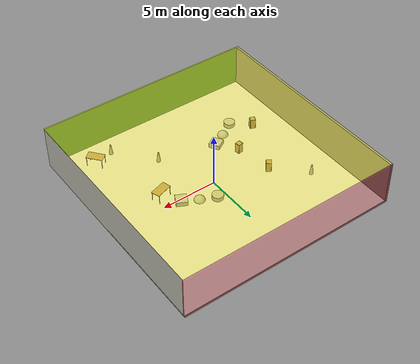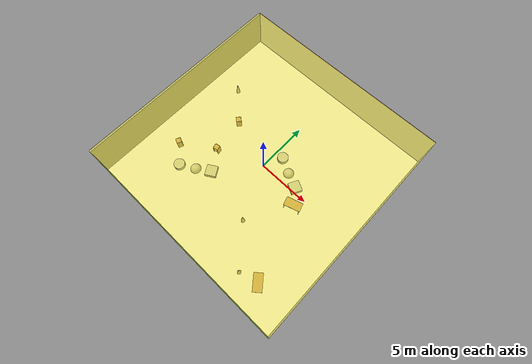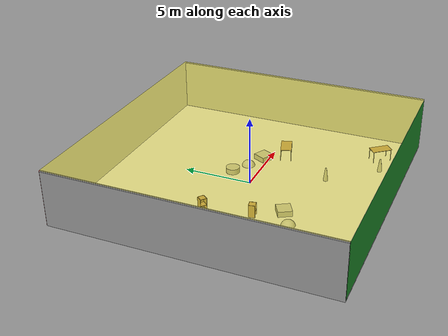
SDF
<sdf version="1.4">
 <world name="default">
  <physics type="ode">
   <max_step_size>0.001</max_step_size>
   <real_time_factor>1</real_time_factor>
   <real_time_update_rate>1000</real_time_update_rate>
   <gravity>0 0 -9.8</gravity>
  </physics>
  <scene><ambient>0.4 0.4 0.4 1</ambient><background>0.7 0.7 0.7 1</background><shadows>1</shadows></scene>
  <model name="Surrounding">
   <static>1</static>
   <link name="Ceiling">
    <collision name="Ceiling_Collision"><geometry><box><size>20 20 0.1</size></box></geometry></collision>
    <visual name="Ceiling_Visual">
     <geometry><box><size>20 20 0.1</size></box></geometry>
     <material>
      <script>
       <uri>file://media/materials/scripts/gazebo.material</uri>
       <name>Gazebo/YellowTransparent</name>
      </script>
     </material>
    </visual>
    <pose>0 0 4.05 0 0 0</pose>
   </link>
   <link name="Wall_South">
    <collision name="Wall_South_Collision">
     <geometry><box><size>20 0 4</size></box></geometry>
     <pose>0 0 2 0 -0 0</pose>
    </collision>
    <visual name="Wall_South_Visual">
     <pose>0 0 2 0 -0 0</pose>
     <geometry><box><size>20 0 4</size></box></geometry>
     <material>
      <script><uri>file://media/materials/scripts/gazebo.material</uri><name>Gazebo/Green</name></script>
     </material>
    </visual>
    <velocity_decay><linear>0</linear><angular>0</angular></velocity_decay>
    <pose>0 -10 0 0 -0 0</pose>
   </link>
   <link name="Wall_East">
    <collision name="Wall_21_Collision">
     <geometry><box><size>20 0 4</size></box></geometry>
     <pose>0 0 2 0 -0 0</pose>
    </collision>
    <visual name="Wall_21_Visual">
     <pose>0 0 2 0 -0 0</pose>
     <geometry><box><size>20 0 4</size></box></geometry>
     <material>
      <script><uri>file://media/materials/scripts/gazebo.material</uri><name>Gazebo/PaintedWall</name></script>
     </material>
    </visual>
    <velocity_decay><linear>0</linear><angular>0</angular></velocity_decay>
    <pose>10 0 0 0 -0 1.5708</pose>
   </link>
   <link name="Wall_North">
    <collision name="Wall_22_Collision">
     <geometry><box><size>20 0.2 4</size></box></geometry>
     <pose>0 0 2 0 -0 0</pose>
    </collision>
    <visual name="Wall_22_Visual">
     <pose>0 0 2 0 -0 0</pose>
     <geometry><box><size>20 0.2 4</size></box></geometry>
     <material>
      <script><uri>file://media/materials/scripts/gazebo.material</uri><name>Gazebo/RedTransparent</name></script>
     </material>
    </visual>
    <velocity_decay><linear>0</linear><angular>0</angular></velocity_decay>
    <pose>0 10 0 0 -0 0</pose>
   </link>
   <link name="Wall_West">
    <collision name="Wall_23_Collision">
     <geometry><box><size>20 0.2 4</size></box></geometry>
     <pose>0 0 2 0 -0 0</pose>
    </collision>
    <visual name="Wall_23_Visual">
     <pose>0 0 2 0 -0 0</pose>
     <geometry><box><size>20 0.2 4</size></box></geometry>
     <material>
      <script><uri>file://media/materials/scripts/gazebo.material</uri><name>Gazebo/GreyGradientSky</name></script>
     </material>
    </visual>
    <velocity_decay><linear>0</linear><angular>0</angular></velocity_decay>
    <pose>-10 0 0 0 0 -1.5708</pose>
   </link>
   <link name="Ground_link">
    <collision name="collision">
     <pose>0 0 .05 0 -0 0</pose>
     <geometry><box><size>20 20 0.1</size></box></geometry>
    </collision>
    <visual name="visual">
     <pose>0 0 .05 0 -0 0</pose>
     <geometry><box><size>20 20 0.1</size></box></geometry>
     <material>
      <script><uri>file://media/materials/scripts/gazebo.material</uri><name>Gazebo/WhiteGlow</name></script>
     </material>
    </visual>
   </link>
   <static>1</static>
  </model>
  <spherical_coordinates>
   <surface_model>EARTH_WGS84</surface_model>
   <latitude_deg>0</latitude_deg>
   <longitude_deg>0</longitude_deg>
   <elevation>0</elevation>
   <heading_deg>0</heading_deg>
  </spherical_coordinates>
  <light name="lightball_0" type="diffuse">
   <diffuse>0.8 0.8 0.8 1</diffuse>
   <specular>0.2 0.2 0.2 1</specular>
   <attenuation>
    <range>100</range>
    <constant>0.7</constant>
    <linear>0.01</linear>
    <quadratic>0.001</quadratic>
   </attenuation>
   <direction>-0.5 0.1 -0.9</direction>
   <pose>-8.28148990161 4.34408288523 1.5143266599 0 0 0</pose>
  </light>
  <light name="lightball_1" type="diffuse">
   <diffuse>0.8 0.8 0.8 1</diffuse>
   <specular>0.2 0.2 0.2 1</specular>
   <attenuation>
    <range>100</range>
    <constant>0.7</constant>
    <linear>0.01</linear>
    <quadratic>0.001</quadratic>
   </attenuation>
   <direction>-0.5 0.1 -0.9</direction>
   <pose>-7.83866741627 2.63332645294 0.611773774929 0 0 0</pose>
  </light>
  <light name="lightball_2" type="diffuse">
   <diffuse>0.8 0.8 0.8 1</diffuse>
   <specular>0.2 0.2 0.2 1</specular>
   <attenuation>
    <range>100</range>
    <constant>0.7</constant>
    <linear>0.01</linear>
    <quadratic>0.001</quadratic>
   </attenuation>
   <direction>-0.5 0.1 -0.9</direction>
   <pose>1.28532743877 5.97838456507 1.65695874145 0 0 0</pose>
  </light>
  <include><uri>model://cabinet</uri><pose>-7.0104091544 -3.81145348384 0 0 0 1.18510727264</pose></include>
  <include>
   <uri>model://construction_cone</uri>
   <pose>-7.2011706343 3.99454506365 0 0 0 0.324839529289</pose>
  </include>
  <include>
   <uri>model://textured_shapes</uri>
   <pose>-4.2032797549 -4.44019325581 0 0 0 2.10724213089</pose>
  </include>
  <include><uri>model://cabinet</uri><pose>-4.03329609403 -1.87366116971 0 0 0 1.73358727969</pose></include>
  <include><uri>model://cabinet</uri><pose>-4.6002382743 1.4959302671 0 0 0 0.90770816848</pose></include>
  <include>
   <uri>model://construction_cone</uri>
   <pose>2.26805748084 -4.90583304982 0 0 0 3.09631519773</pose>
  </include>
  <include>
   <uri>model://textured_shapes</uri>
   <pose>2.20075156669 1.00558892027 0 0 0 1.10190448362</pose>
  </include>
  <include>
   <uri>model://construction_cone</uri>
   <pose>5.03947124228 -8.14381608046 0 0 0 2.52920493224</pose>
  </include>
  <include><uri>model://table</uri><pose>4.547698089 -1.08653055261 0 0 0 0.30230690425</pose></include>
  <include><uri>model://table</uri><pose>6.75773046263 -7.72503090081 0 0 0 2.2497911891</pose></include>
 </world>
</sdf>

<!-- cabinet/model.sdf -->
<sdf version="1.5">
  <model name="cabinet">
    <static>true</static>
    <link name="cabinet_bottom_plate">
      <inertial>
        <pose>0 0 -1 0 0 0</pose>
        <inertia>
          <ixx>2.050000</ixx>
          <ixy>0</ixy>
          <ixz>0</ixz>
          <iyy>2.050000</iyy>
          <iyz>0</iyz>
          <izz>2.050000</izz>
        </inertia>
        <mass>25.000000</mass>
      </inertial>
      <collision name="cabinet_bottom_plate_geom">
        <pose>0 0 0.010000 0 0 0</pose>
        <geometry>
          <box>
            <size>0.450000 0.450000 0.020000</size>
          </box>
        </geometry>
      </collision>
      <visual name="cabinet_bottom_plate_geom_visual">
        <pose>0 0 0.010000 0 0 0</pose>
        <geometry>
          <box>
            <size>0.450000 0.450000 0.020000</size>
          </box>
        </geometry>
        <material>
          <script>
            <uri>model://media/materials/scripts/gazebo.material</uri>
            <name>Gazebo/Wood</name>
          </script>
        </material>
      </visual>
      <collision name="cabinet_bottom_plate_geom_cabinet_back_plate">
        <pose>0.235000 0 0.510000 0 0 0</pose>
        <geometry>
          <box>
            <size>0.020000 0.450000 1.020000</size>
          </box>
        </geometry>
      </collision>
      <visual name="cabinet_bottom_plate_geom_cabinet_back_plate_visual">
        <pose>0.235000 0 0.510000 0 0 0</pose>
        <geometry>
          <box>
            <size>0.020000 0.450000 1.020000</size>
          </box>
        </geometry>
        <material>
          <script>
            <uri>model://media/materials/scripts/gazebo.material</uri>
            <name>Gazebo/Wood</name>
          </script>
        </material>
      </visual>
      <collision name="cabinet_bottom_plate_geom_cabinet_left_plate">
        <pose>0 0.235000 0.510000 0 0 0</pose>
        <geometry>
          <box>
            <size>0.450000 0.020000 1.020000</size>
          </box>
        </geometry>
      </collision>
      <visual name="cabinet_bottom_plate_geom_cabinet_left_plate_visual">
        <pose>0 0.235000 0.510000 0 0 0</pose>
        <geometry>
          <box>
            <size>0.450000 0.020000 1.020000</size>
          </box>
        </geometry>
        <material>
          <script>
            <uri>model://media/materials/scripts/gazebo.material</uri>
            <name>Gazebo/Wood</name>
          </script>
        </material>
      </visual>
      <collision name="cabinet_bottom_plate_geom_cabinet_middle_plate">
        <pose>0 0 0.510000 0 0 0</pose>
        <geometry>
          <box>
            <size>0.450000 0.450000 0.020000</size>
          </box>
        </geometry>
      </collision>
      <visual name="cabinet_bottom_plate_geom_cabinet_middle_plate_visual">
        <pose>0 0 0.510000 0 0 0</pose>
        <geometry>
          <box>
            <size>0.450000 0.450000 0.020000</size>
          </box>
        </geometry>
        <material>
          <script>
            <uri>model://media/materials/scripts/gazebo.material</uri>
            <name>Gazebo/Wood</name>
          </script>
        </material>
      </visual>
      <collision name="cabinet_bottom_plate_geom_cabinet_right_plate">
        <pose>0 -0.235000 0.510000 0 0 0</pose>
        <geometry>
          <box>
            <size>0.450000 0.020000 1.020000</size>
          </box>
        </geometry>
      </collision>
      <visual name="cabinet_bottom_plate_geom_cabinet_right_plate_visual">
        <pose>0 -0.235000 0.510000 0 0 0</pose>
        <geometry>
          <box>
            <size>0.450000 0.020000 1.020000</size>
          </box>
        </geometry>
        <material>
          <script>
            <uri>model://media/materials/scripts/gazebo.material</uri>
            <name>Gazebo/Wood</name>
          </script>
        </material>
      </visual>
      <collision name="cabinet_bottom_plate_geom_cabinet_top_plate">
        <pose>0 0 1.010000 0 0 0</pose>
        <geometry>
          <box>
            <size>0.450000 0.450000 0.020000</size>
          </box>
        </geometry>
      </collision>
      <visual name="cabinet_bottom_plate_geom_cabinet_top_plate_visual">
        <pose>0 0 1.010000 0 0 0</pose>
        <geometry>
          <box>
            <size>0.450000 0.450000 0.020000</size>
          </box>
        </geometry>
        <material>
          <script>
            <uri>model://media/materials/scripts/gazebo.material</uri>
            <name>Gazebo/Wood</name>
          </script>
        </material>
      </visual>
    </link>
  </model>
</sdf>

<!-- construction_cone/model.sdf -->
<sdf version="1.5">
  <model name="Construction Cone">
    <link name="link">
      <collision name="collision">
        <geometry>
          <mesh>
            <scale>10 10 10</scale>
            <uri>file://isr-testbed/construction_cone/meshes/construction_cone.dae</uri>
          </mesh>
        </geometry>
      </collision>
      <visual name="visual">
        <geometry>
          <mesh>
            <scale>10 10 10</scale>
            <uri>file://isr-testbed/construction_cone/meshes/construction_cone.dae</uri>
          </mesh>
        </geometry>
      </visual>
    </link>
  </model>
</sdf>

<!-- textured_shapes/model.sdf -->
<sdf version="1.6">
  <model name="textured_shapes">
    <pose>0 0 0.5 0 0 0</pose>
    <link name="box">
      <pose>0 -1.5 0 0 0 0</pose>
      <collision name="collision">
        <geometry>
          <box>
            <size>1 1 1</size>
          </box>
        </geometry>
      </collision>
      <visual name="visual">
        <geometry>
          <box>
            <size>1 1 1</size>
          </box>
        </geometry>
        <material>
          <script>
            <uri>model://../model_source/models/textured_shapes/materials/scripts</uri>
            <uri>model://../model_source/models/textured_shapes/materials/textures</uri>
            <name>TexturedShape/Squares</name>
          </script>
        </material>
      </visual>
    </link>
    <link name="sphere">
      <collision name="collision">
        <geometry>
          <sphere>
            <radius>0.5</radius>
          </sphere>
        </geometry>
      </collision>
      <visual name="visual">
        <geometry>
          <sphere>
            <radius>0.5</radius>
          </sphere>
        </geometry>
        <material>
          <script>
            <uri>model://../model_source/models/textured_shapes/materials/scripts</uri>
            <uri>model://../model_source/models/textured_shapes/materials/textures</uri>
            <name>TexturedShape/Squares</name>
          </script>
        </material>
      </visual>
    </link>
    <link name="cylinder">
      <pose>0 1.5 0 0 0 0</pose>
      <collision name="collision">
        <geometry>
          <cylinder>
            <radius>0.5</radius>
            <length>1</length>
          </cylinder>
        </geometry>
      </collision>
      <visual name="visual">
        <geometry>
          <cylinder>
            <radius>0.5</radius>
            <length>1</length>
          </cylinder>
        </geometry>
        <material>
          <script>
            <uri>model://../model_source/models/textured_shapes/materials/scripts</uri>
            <uri>model://../model_source/models/textured_shapes/materials/textures</uri>
            <name>TexturedShape/Squares</name>
          </script>
        </material>
      </visual>
    </link>
  </model>
</sdf>

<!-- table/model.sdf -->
<sdf version="1.5">
  <model name="table">
    <static>true</static>
    <link name="link">
      <collision name="surface">
        <pose>0 0 1.0 0 0 0</pose>
        <geometry>
          <box>
            <size>1.5 0.8 0.03</size>
          </box>
        </geometry>
        <surface>
          <friction>
            <ode>
              <mu>0.6</mu>
              <mu2>0.6</mu2>
            </ode>
          </friction>
        </surface>
      </collision>
      <visual name="visual1">
        <pose>0 0 1.0 0 0 0</pose>
        <geometry>
          <box>
            <size>1.5 0.8 0.03</size>
          </box>
        </geometry>
        <material>
          <script>
            <uri>model://media/materials/scripts/gazebo.material</uri>
            <name>Gazebo/Wood</name>
          </script>
        </material>
      </visual>
      <collision name="front_left_leg">
        <pose>0.68 0.38 0.5 0 0 0</pose>
        <geometry>
          <cylinder>
            <radius>0.02</radius>
            <length>1.0</length>
          </cylinder>
        </geometry>
      </collision>
      <visual name="front_left_leg">
        <pose>0.68 0.38 0.5 0 0 0</pose>
        <geometry>
          <cylinder>
            <radius>0.02</radius>
            <length>1.0</length>
          </cylinder>
        </geometry>
        <material>
          <script>
            <uri>model://media/materials/scripts/gazebo.material</uri>
            <name>Gazebo/Grey</name>
          </script>
        </material>
      </visual>
      <collision name="front_right_leg">
        <pose>0.68 -0.38 0.5 0 0 0</pose>
        <geometry>
          <cylinder>
            <radius>0.02</radius>
            <length>1.0</length>
          </cylinder>
        </geometry>
      </collision>
      <visual name="front_right_leg">
        <pose>0.68 -0.38 0.5 0 0 0</pose>
        <geometry>
          <cylinder>
            <radius>0.02</radius>
            <length>1.0</length>
          </cylinder>
        </geometry>
        <material>
          <script>
            <uri>model://media/materials/scripts/gazebo.material</uri>
            <name>Gazebo/Grey</name>
          </script>
        </material>
      </visual>
      <collision name="back_right_leg">
        <pose>-0.68 -0.38 0.5 0 0 0</pose>
        <geometry>
          <cylinder>
            <radius>0.02</radius>
            <length>1.0</length>
          </cylinder>
        </geometry>
      </collision>
      <visual name="back_right_leg">
        <pose>-0.68 -0.38 0.5 0 0 0</pose>
        <geometry>
          <cylinder>
            <radius>0.02</radius>
            <length>1.0</length>
          </cylinder>
        </geometry>
        <material>
          <script>
            <uri>model://media/materials/scripts/gazebo.material</uri>
            <name>Gazebo/Grey</name>
          </script>
        </material>
      </visual>
      <collision name="back_left_leg">
        <pose>-0.68 0.38 0.5 0 0 0</pose>
        <geometry>
          <cylinder>
            <radius>0.02</radius>
            <length>1.0</length>
          </cylinder>
        </geometry>
      </collision>
      <visual name="back_left_leg">
        <pose>-0.68 0.38 0.5 0 0 0</pose>
        <geometry>
          <cylinder>
            <radius>0.02</radius>
            <length>1.0</length>
          </cylinder>
        </geometry>
        <material>
          <script>
            <uri>model://media/materials/scripts/gazebo.material</uri>
            <name>Gazebo/Grey</name>
          </script>
        </material>
      </visual>
    </link>
  </model>
</sdf>
